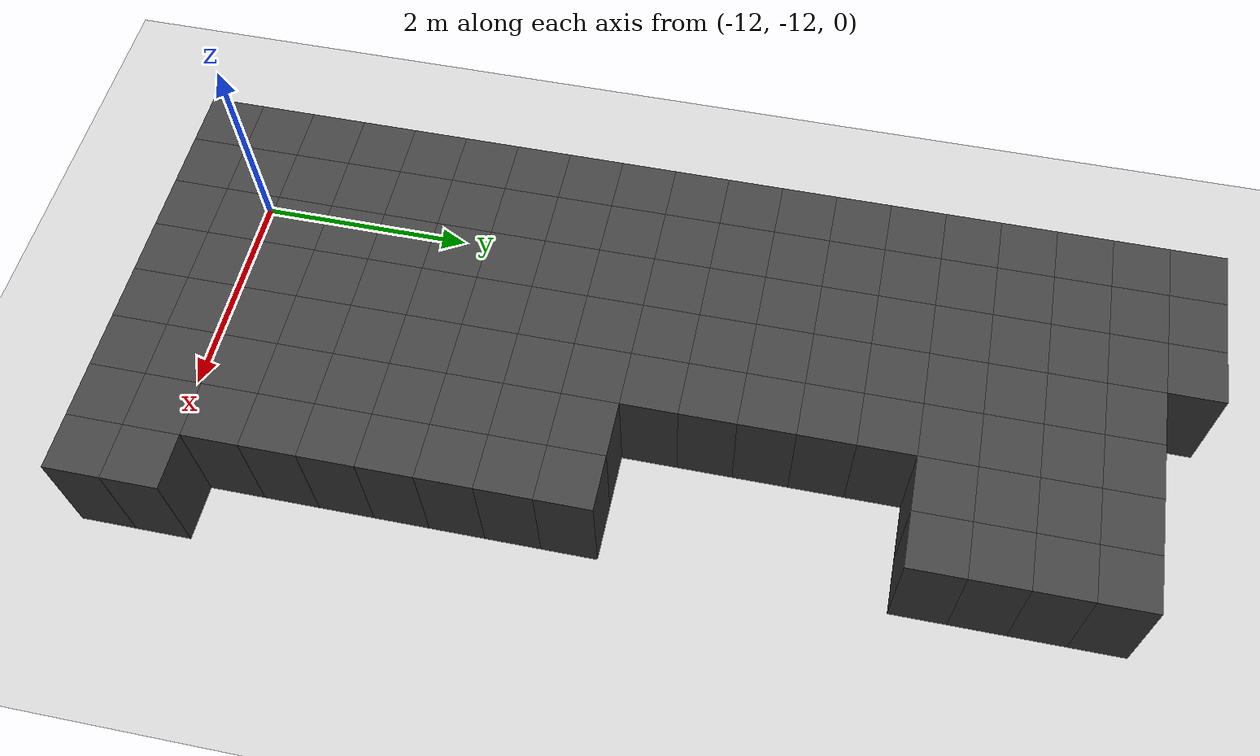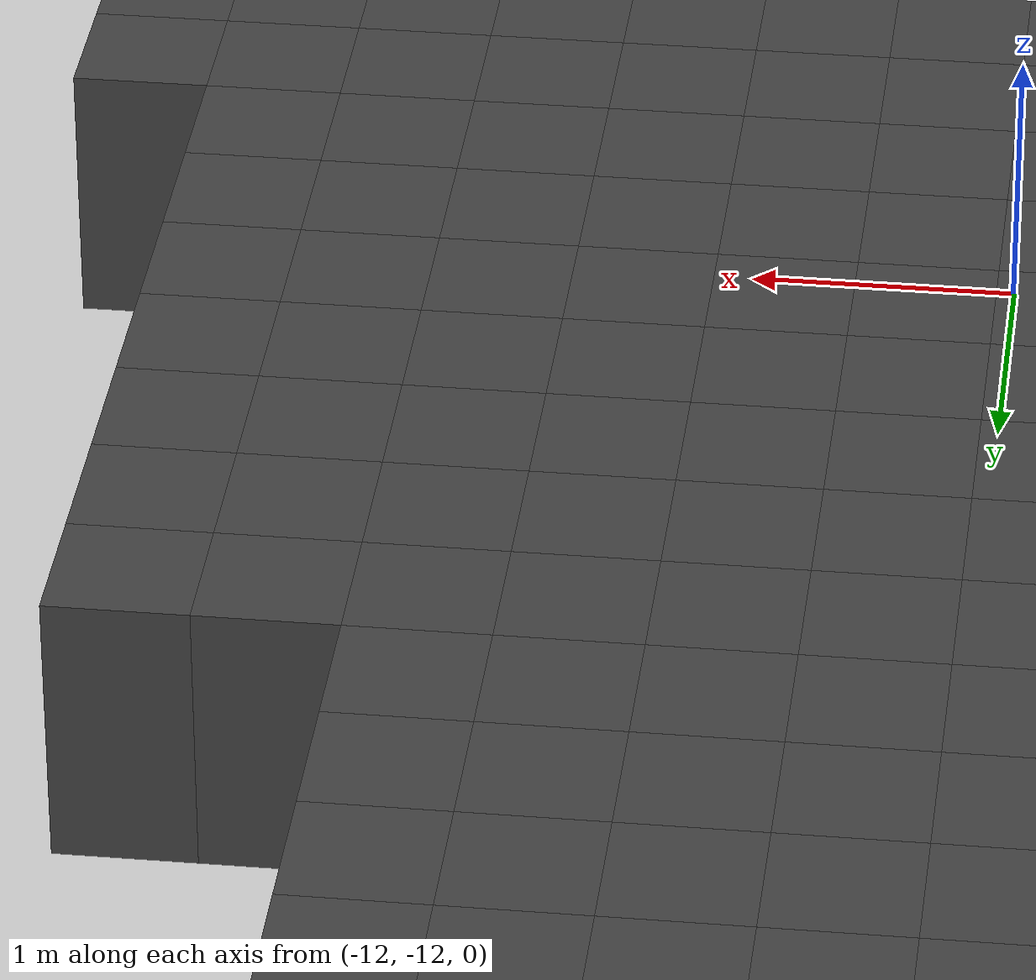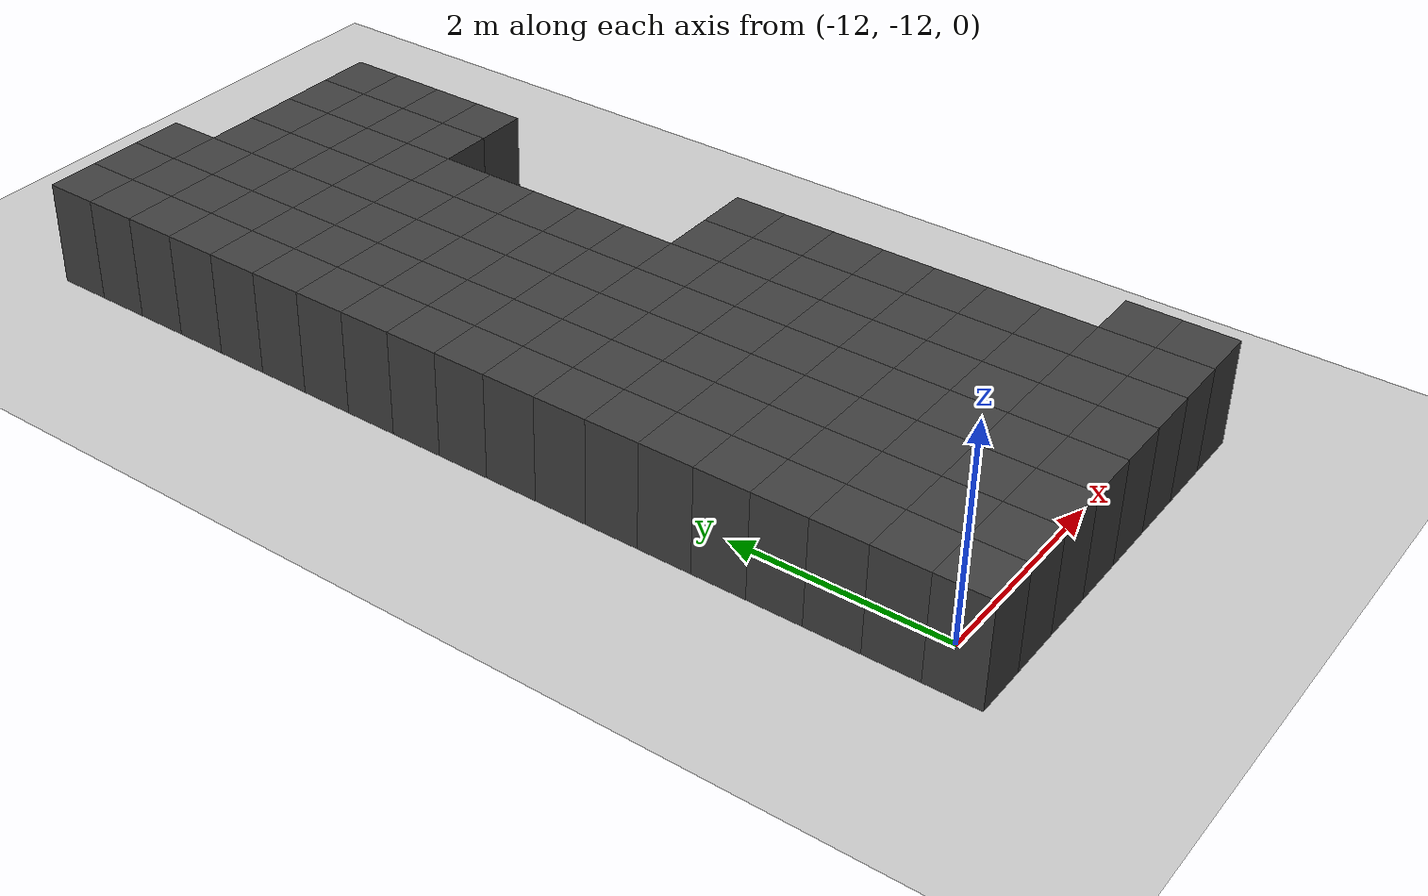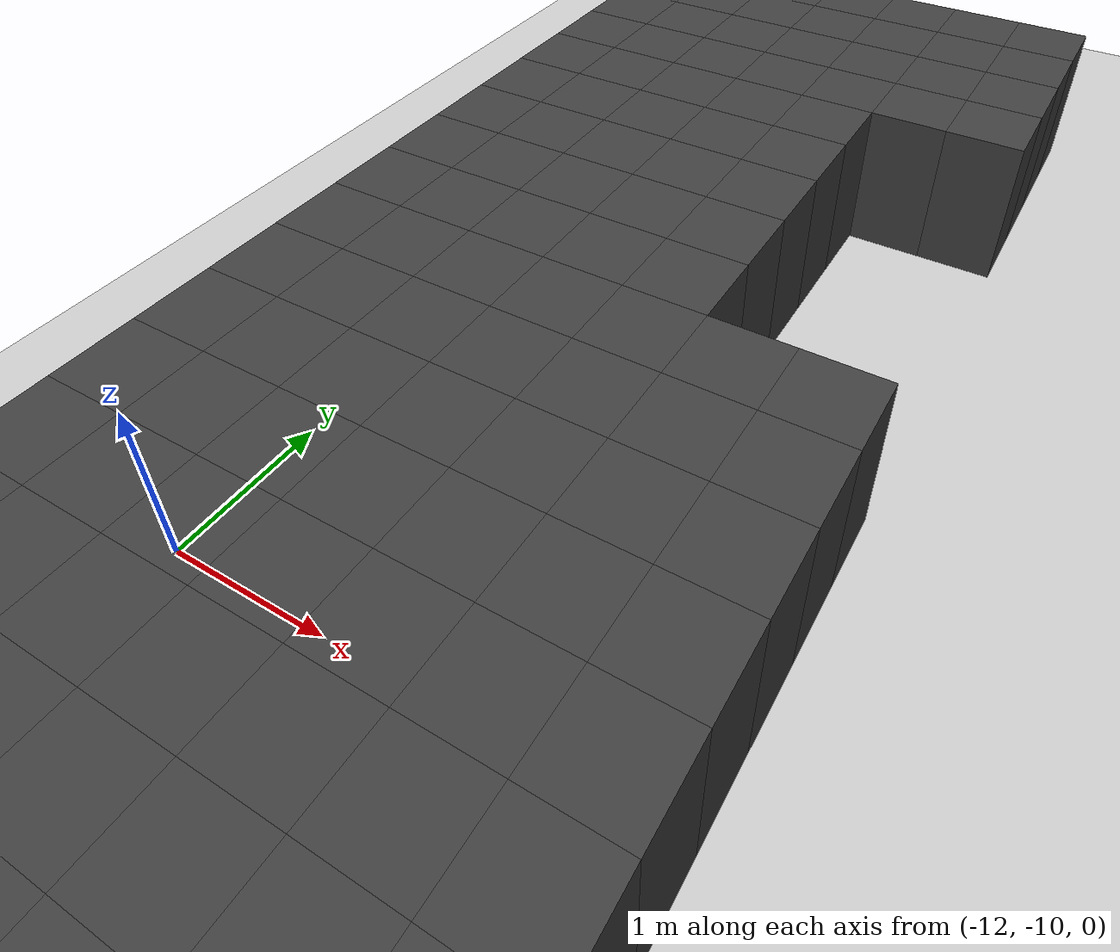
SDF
<sdf version="1.7">
 <world name="map_14510">
  <model name="ground_plane">
   <static>true</static>
   <link name="link">
    <collision name="collision">
     <geometry><plane><normal>0 0 1</normal><size>200 200</size></plane></geometry>
    </collision>
    <visual name="visual">
     <geometry><plane><normal>0 0 1</normal><size>200 200</size></plane></geometry>
     <material><ambient>0.8 0.8 0.8 1</ambient><diffuse>0.8 0.8 0.8 1</diffuse></material>
    </visual>
   </link>
  </model>
  <model name="maze_environment">
   <static>true</static>
   <link name="wall_1054">
    <pose>-12.250 -3.250 0.500 0 0 0</pose>
    <collision name="col"><geometry><box><size>0.5 0.5 1.0</size></box></geometry></collision>
    <visual name="vis">
     <geometry><box><size>0.5 0.5 1.0</size></box></geometry>
     <material><ambient>0.15 0.15 0.15 1</ambient><diffuse>0.25 0.25 0.25 1</diffuse></material>
    </visual>
   </link>
   <link name="wall_1055">
    <pose>-11.750 -3.250 0.500 0 0 0</pose>
    <collision name="col"><geometry><box><size>0.5 0.5 1.0</size></box></geometry></collision>
    <visual name="vis">
     <geometry><box><size>0.5 0.5 1.0</size></box></geometry>
     <material><ambient>0.15 0.15 0.15 1</ambient><diffuse>0.25 0.25 0.25 1</diffuse></material>
    </visual>
   </link>
   <link name="wall_1056">
    <pose>-11.250 -3.250 0.500 0 0 0</pose>
    <collision name="col"><geometry><box><size>0.5 0.5 1.0</size></box></geometry></collision>
    <visual name="vis">
     <geometry><box><size>0.5 0.5 1.0</size></box></geometry>
     <material><ambient>0.15 0.15 0.15 1</ambient><diffuse>0.25 0.25 0.25 1</diffuse></material>
    </visual>
   </link>
   <link name="wall_1090">
    <pose>-12.250 -3.750 0.500 0 0 0</pose>
    <collision name="col"><geometry><box><size>0.5 0.5 1.0</size></box></geometry></collision>
    <visual name="vis">
     <geometry><box><size>0.5 0.5 1.0</size></box></geometry>
     <material><ambient>0.15 0.15 0.15 1</ambient><diffuse>0.25 0.25 0.25 1</diffuse></material>
    </visual>
   </link>
   <link name="wall_1091">
    <pose>-11.750 -3.750 0.500 0 0 0</pose>
    <collision name="col"><geometry><box><size>0.5 0.5 1.0</size></box></geometry></collision>
    <visual name="vis">
     <geometry><box><size>0.5 0.5 1.0</size></box></geometry>
     <material><ambient>0.15 0.15 0.15 1</ambient><diffuse>0.25 0.25 0.25 1</diffuse></material>
    </visual>
   </link>
   <link name="wall_1092">
    <pose>-11.250 -3.750 0.500 0 0 0</pose>
    <collision name="col"><geometry><box><size>0.5 0.5 1.0</size></box></geometry></collision>
    <visual name="vis">
     <geometry><box><size>0.5 0.5 1.0</size></box></geometry>
     <material><ambient>0.15 0.15 0.15 1</ambient><diffuse>0.25 0.25 0.25 1</diffuse></material>
    </visual>
   </link>
   <link name="wall_1093">
    <pose>-10.750 -3.750 0.500 0 0 0</pose>
    <collision name="col"><geometry><box><size>0.5 0.5 1.0</size></box></geometry></collision>
    <visual name="vis">
     <geometry><box><size>0.5 0.5 1.0</size></box></geometry>
     <material><ambient>0.15 0.15 0.15 1</ambient><diffuse>0.25 0.25 0.25 1</diffuse></material>
    </visual>
   </link>
   <link name="wall_1094">
    <pose>-10.250 -3.750 0.500 0 0 0</pose>
    <collision name="col"><geometry><box><size>0.5 0.5 1.0</size></box></geometry></collision>
    <visual name="vis">
     <geometry><box><size>0.5 0.5 1.0</size></box></geometry>
     <material><ambient>0.15 0.15 0.15 1</ambient><diffuse>0.25 0.25 0.25 1</diffuse></material>
    </visual>
   </link>
   <link name="wall_1095">
    <pose>-9.750 -3.750 0.500 0 0 0</pose>
    <collision name="col"><geometry><box><size>0.5 0.5 1.0</size></box></geometry></collision>
    <visual name="vis">
     <geometry><box><size>0.5 0.5 1.0</size></box></geometry>
     <material><ambient>0.15 0.15 0.15 1</ambient><diffuse>0.25 0.25 0.25 1</diffuse></material>
    </visual>
   </link>
   <link name="wall_1096">
    <pose>-9.250 -3.750 0.500 0 0 0</pose>
    <collision name="col"><geometry><box><size>0.5 0.5 1.0</size></box></geometry></collision>
    <visual name="vis">
     <geometry><box><size>0.5 0.5 1.0</size></box></geometry>
     <material><ambient>0.15 0.15 0.15 1</ambient><diffuse>0.25 0.25 0.25 1</diffuse></material>
    </visual>
   </link>
   <link name="wall_1126">
    <pose>-12.250 -4.250 0.500 0 0 0</pose>
    <collision name="col"><geometry><box><size>0.5 0.5 1.0</size></box></geometry></collision>
    <visual name="vis">
     <geometry><box><size>0.5 0.5 1.0</size></box></geometry>
     <material><ambient>0.15 0.15 0.15 1</ambient><diffuse>0.25 0.25 0.25 1</diffuse></material>
    </visual>
   </link>
   <link name="wall_1127">
    <pose>-11.750 -4.250 0.500 0 0 0</pose>
    <collision name="col"><geometry><box><size>0.5 0.5 1.0</size></box></geometry></collision>
    <visual name="vis">
     <geometry><box><size>0.5 0.5 1.0</size></box></geometry>
     <material><ambient>0.15 0.15 0.15 1</ambient><diffuse>0.25 0.25 0.25 1</diffuse></material>
    </visual>
   </link>
   <link name="wall_1128">
    <pose>-11.250 -4.250 0.500 0 0 0</pose>
    <collision name="col"><geometry><box><size>0.5 0.5 1.0</size></box></geometry></collision>
    <visual name="vis">
     <geometry><box><size>0.5 0.5 1.0</size></box></geometry>
     <material><ambient>0.15 0.15 0.15 1</ambient><diffuse>0.25 0.25 0.25 1</diffuse></material>
    </visual>
   </link>
   <link name="wall_1129">
    <pose>-10.750 -4.250 0.500 0 0 0</pose>
    <collision name="col"><geometry><box><size>0.5 0.5 1.0</size></box></geometry></collision>
    <visual name="vis">
     <geometry><box><size>0.5 0.5 1.0</size></box></geometry>
     <material><ambient>0.15 0.15 0.15 1</ambient><diffuse>0.25 0.25 0.25 1</diffuse></material>
    </visual>
   </link>
   <link name="wall_1130">
    <pose>-10.250 -4.250 0.500 0 0 0</pose>
    <collision name="col"><geometry><box><size>0.5 0.5 1.0</size></box></geometry></collision>
    <visual name="vis">
     <geometry><box><size>0.5 0.5 1.0</size></box></geometry>
     <material><ambient>0.15 0.15 0.15 1</ambient><diffuse>0.25 0.25 0.25 1</diffuse></material>
    </visual>
   </link>
   <link name="wall_1131">
    <pose>-9.750 -4.250 0.500 0 0 0</pose>
    <collision name="col"><geometry><box><size>0.5 0.5 1.0</size></box></geometry></collision>
    <visual name="vis">
     <geometry><box><size>0.5 0.5 1.0</size></box></geometry>
     <material><ambient>0.15 0.15 0.15 1</ambient><diffuse>0.25 0.25 0.25 1</diffuse></material>
    </visual>
   </link>
   <link name="wall_1132">
    <pose>-9.250 -4.250 0.500 0 0 0</pose>
    <collision name="col"><geometry><box><size>0.5 0.5 1.0</size></box></geometry></collision>
    <visual name="vis">
     <geometry><box><size>0.5 0.5 1.0</size></box></geometry>
     <material><ambient>0.15 0.15 0.15 1</ambient><diffuse>0.25 0.25 0.25 1</diffuse></material>
    </visual>
   </link>
   <link name="wall_1167">
    <pose>-12.250 -4.750 0.500 0 0 0</pose>
    <collision name="col"><geometry><box><size>0.5 0.5 1.0</size></box></geometry></collision>
    <visual name="vis">
     <geometry><box><size>0.5 0.5 1.0</size></box></geometry>
     <material><ambient>0.15 0.15 0.15 1</ambient><diffuse>0.25 0.25 0.25 1</diffuse></material>
    </visual>
   </link>
   <link name="wall_1168">
    <pose>-11.750 -4.750 0.500 0 0 0</pose>
    <collision name="col"><geometry><box><size>0.5 0.5 1.0</size></box></geometry></collision>
    <visual name="vis">
     <geometry><box><size>0.5 0.5 1.0</size></box></geometry>
     <material><ambient>0.15 0.15 0.15 1</ambient><diffuse>0.25 0.25 0.25 1</diffuse></material>
    </visual>
   </link>
   <link name="wall_1169">
    <pose>-11.250 -4.750 0.500 0 0 0</pose>
    <collision name="col"><geometry><box><size>0.5 0.5 1.0</size></box></geometry></collision>
    <visual name="vis">
     <geometry><box><size>0.5 0.5 1.0</size></box></geometry>
     <material><ambient>0.15 0.15 0.15 1</ambient><diffuse>0.25 0.25 0.25 1</diffuse></material>
    </visual>
   </link>
   <link name="wall_1170">
    <pose>-10.750 -4.750 0.500 0 0 0</pose>
    <collision name="col"><geometry><box><size>0.5 0.5 1.0</size></box></geometry></collision>
    <visual name="vis">
     <geometry><box><size>0.5 0.5 1.0</size></box></geometry>
     <material><ambient>0.15 0.15 0.15 1</ambient><diffuse>0.25 0.25 0.25 1</diffuse></material>
    </visual>
   </link>
   <link name="wall_1171">
    <pose>-10.250 -4.750 0.500 0 0 0</pose>
    <collision name="col"><geometry><box><size>0.5 0.5 1.0</size></box></geometry></collision>
    <visual name="vis">
     <geometry><box><size>0.5 0.5 1.0</size></box></geometry>
     <material><ambient>0.15 0.15 0.15 1</ambient><diffuse>0.25 0.25 0.25 1</diffuse></material>
    </visual>
   </link>
   <link name="wall_1172">
    <pose>-9.750 -4.750 0.500 0 0 0</pose>
    <collision name="col"><geometry><box><size>0.5 0.5 1.0</size></box></geometry></collision>
    <visual name="vis">
     <geometry><box><size>0.5 0.5 1.0</size></box></geometry>
     <material><ambient>0.15 0.15 0.15 1</ambient><diffuse>0.25 0.25 0.25 1</diffuse></material>
    </visual>
   </link>
   <link name="wall_1173">
    <pose>-9.250 -4.750 0.500 0 0 0</pose>
    <collision name="col"><geometry><box><size>0.5 0.5 1.0</size></box></geometry></collision>
    <visual name="vis">
     <geometry><box><size>0.5 0.5 1.0</size></box></geometry>
     <material><ambient>0.15 0.15 0.15 1</ambient><diffuse>0.25 0.25 0.25 1</diffuse></material>
    </visual>
   </link>
   <link name="wall_1215">
    <pose>-12.250 -5.250 0.500 0 0 0</pose>
    <collision name="col"><geometry><box><size>0.5 0.5 1.0</size></box></geometry></collision>
    <visual name="vis">
     <geometry><box><size>0.5 0.5 1.0</size></box></geometry>
     <material><ambient>0.15 0.15 0.15 1</ambient><diffuse>0.25 0.25 0.25 1</diffuse></material>
    </visual>
   </link>
   <link name="wall_1216">
    <pose>-11.750 -5.250 0.500 0 0 0</pose>
    <collision name="col"><geometry><box><size>0.5 0.5 1.0</size></box></geometry></collision>
    <visual name="vis">
     <geometry><box><size>0.5 0.5 1.0</size></box></geometry>
     <material><ambient>0.15 0.15 0.15 1</ambient><diffuse>0.25 0.25 0.25 1</diffuse></material>
    </visual>
   </link>
   <link name="wall_1217">
    <pose>-11.250 -5.250 0.500 0 0 0</pose>
    <collision name="col"><geometry><box><size>0.5 0.5 1.0</size></box></geometry></collision>
    <visual name="vis">
     <geometry><box><size>0.5 0.5 1.0</size></box></geometry>
     <material><ambient>0.15 0.15 0.15 1</ambient><diffuse>0.25 0.25 0.25 1</diffuse></material>
    </visual>
   </link>
   <link name="wall_1218">
    <pose>-10.750 -5.250 0.500 0 0 0</pose>
    <collision name="col"><geometry><box><size>0.5 0.5 1.0</size></box></geometry></collision>
    <visual name="vis">
     <geometry><box><size>0.5 0.5 1.0</size></box></geometry>
     <material><ambient>0.15 0.15 0.15 1</ambient><diffuse>0.25 0.25 0.25 1</diffuse></material>
    </visual>
   </link>
   <link name="wall_1219">
    <pose>-10.250 -5.250 0.500 0 0 0</pose>
    <collision name="col"><geometry><box><size>0.5 0.5 1.0</size></box></geometry></collision>
    <visual name="vis">
     <geometry><box><size>0.5 0.5 1.0</size></box></geometry>
     <material><ambient>0.15 0.15 0.15 1</ambient><diffuse>0.25 0.25 0.25 1</diffuse></material>
    </visual>
   </link>
   <link name="wall_1220">
    <pose>-9.750 -5.250 0.500 0 0 0</pose>
    <collision name="col"><geometry><box><size>0.5 0.5 1.0</size></box></geometry></collision>
    <visual name="vis">
     <geometry><box><size>0.5 0.5 1.0</size></box></geometry>
     <material><ambient>0.15 0.15 0.15 1</ambient><diffuse>0.25 0.25 0.25 1</diffuse></material>
    </visual>
   </link>
   <link name="wall_1221">
    <pose>-9.250 -5.250 0.500 0 0 0</pose>
    <collision name="col"><geometry><box><size>0.5 0.5 1.0</size></box></geometry></collision>
    <visual name="vis">
     <geometry><box><size>0.5 0.5 1.0</size></box></geometry>
     <material><ambient>0.15 0.15 0.15 1</ambient><diffuse>0.25 0.25 0.25 1</diffuse></material>
    </visual>
   </link>
   <link name="wall_1263">
    <pose>-12.250 -5.750 0.500 0 0 0</pose>
    <collision name="col"><geometry><box><size>0.5 0.5 1.0</size></box></geometry></collision>
    <visual name="vis">
     <geometry><box><size>0.5 0.5 1.0</size></box></geometry>
     <material><ambient>0.15 0.15 0.15 1</ambient><diffuse>0.25 0.25 0.25 1</diffuse></material>
    </visual>
   </link>
   <link name="wall_1264">
    <pose>-11.750 -5.750 0.500 0 0 0</pose>
    <collision name="col"><geometry><box><size>0.5 0.5 1.0</size></box></geometry></collision>
    <visual name="vis">
     <geometry><box><size>0.5 0.5 1.0</size></box></geometry>
     <material><ambient>0.15 0.15 0.15 1</ambient><diffuse>0.25 0.25 0.25 1</diffuse></material>
    </visual>
   </link>
   <link name="wall_1265">
    <pose>-11.250 -5.750 0.500 0 0 0</pose>
    <collision name="col"><geometry><box><size>0.5 0.5 1.0</size></box></geometry></collision>
    <visual name="vis">
     <geometry><box><size>0.5 0.5 1.0</size></box></geometry>
     <material><ambient>0.15 0.15 0.15 1</ambient><diffuse>0.25 0.25 0.25 1</diffuse></material>
    </visual>
   </link>
   <link name="wall_1266">
    <pose>-10.750 -5.750 0.500 0 0 0</pose>
    <collision name="col"><geometry><box><size>0.5 0.5 1.0</size></box></geometry></collision>
    <visual name="vis">
     <geometry><box><size>0.5 0.5 1.0</size></box></geometry>
     <material><ambient>0.15 0.15 0.15 1</ambient><diffuse>0.25 0.25 0.25 1</diffuse></material>
    </visual>
   </link>
   <link name="wall_1267">
    <pose>-10.250 -5.750 0.500 0 0 0</pose>
    <collision name="col"><geometry><box><size>0.5 0.5 1.0</size></box></geometry></collision>
    <visual name="vis">
     <geometry><box><size>0.5 0.5 1.0</size></box></geometry>
     <material><ambient>0.15 0.15 0.15 1</ambient><diffuse>0.25 0.25 0.25 1</diffuse></material>
    </visual>
   </link>
   <link name="wall_1304">
    <pose>-12.250 -6.250 0.500 0 0 0</pose>
    <collision name="col"><geometry><box><size>0.5 0.5 1.0</size></box></geometry></collision>
    <visual name="vis">
     <geometry><box><size>0.5 0.5 1.0</size></box></geometry>
     <material><ambient>0.15 0.15 0.15 1</ambient><diffuse>0.25 0.25 0.25 1</diffuse></material>
    </visual>
   </link>
   <link name="wall_1305">
    <pose>-11.750 -6.250 0.500 0 0 0</pose>
    <collision name="col"><geometry><box><size>0.5 0.5 1.0</size></box></geometry></collision>
    <visual name="vis">
     <geometry><box><size>0.5 0.5 1.0</size></box></geometry>
     <material><ambient>0.15 0.15 0.15 1</ambient><diffuse>0.25 0.25 0.25 1</diffuse></material>
    </visual>
   </link>
   <link name="wall_1306">
    <pose>-11.250 -6.250 0.500 0 0 0</pose>
    <collision name="col"><geometry><box><size>0.5 0.5 1.0</size></box></geometry></collision>
    <visual name="vis">
     <geometry><box><size>0.5 0.5 1.0</size></box></geometry>
     <material><ambient>0.15 0.15 0.15 1</ambient><diffuse>0.25 0.25 0.25 1</diffuse></material>
    </visual>
   </link>
   <link name="wall_1307">
    <pose>-10.750 -6.250 0.500 0 0 0</pose>
    <collision name="col"><geometry><box><size>0.5 0.5 1.0</size></box></geometry></collision>
    <visual name="vis">
     <geometry><box><size>0.5 0.5 1.0</size></box></geometry>
     <material><ambient>0.15 0.15 0.15 1</ambient><diffuse>0.25 0.25 0.25 1</diffuse></material>
    </visual>
   </link>
   <link name="wall_1308">
    <pose>-10.250 -6.250 0.500 0 0 0</pose>
    <collision name="col"><geometry><box><size>0.5 0.5 1.0</size></box></geometry></collision>
    <visual name="vis">
     <geometry><box><size>0.5 0.5 1.0</size></box></geometry>
     <material><ambient>0.15 0.15 0.15 1</ambient><diffuse>0.25 0.25 0.25 1</diffuse></material>
    </visual>
   </link>
   <link name="wall_1339">
    <pose>-12.250 -6.750 0.500 0 0 0</pose>
    <collision name="col"><geometry><box><size>0.5 0.5 1.0</size></box></geometry></collision>
    <visual name="vis">
     <geometry><box><size>0.5 0.5 1.0</size></box></geometry>
     <material><ambient>0.15 0.15 0.15 1</ambient><diffuse>0.25 0.25 0.25 1</diffuse></material>
    </visual>
   </link>
   <link name="wall_1340">
    <pose>-11.750 -6.750 0.500 0 0 0</pose>
    <collision name="col"><geometry><box><size>0.5 0.5 1.0</size></box></geometry></collision>
    <visual name="vis">
     <geometry><box><size>0.5 0.5 1.0</size></box></geometry>
     <material><ambient>0.15 0.15 0.15 1</ambient><diffuse>0.25 0.25 0.25 1</diffuse></material>
    </visual>
   </link>
   <link name="wall_1341">
    <pose>-11.250 -6.750 0.500 0 0 0</pose>
    <collision name="col"><geometry><box><size>0.5 0.5 1.0</size></box></geometry></collision>
    <visual name="vis">
     <geometry><box><size>0.5 0.5 1.0</size></box></geometry>
     <material><ambient>0.15 0.15 0.15 1</ambient><diffuse>0.25 0.25 0.25 1</diffuse></material>
    </visual>
   </link>
   <link name="wall_1342">
    <pose>-10.750 -6.750 0.500 0 0 0</pose>
    <collision name="col"><geometry><box><size>0.5 0.5 1.0</size></box></geometry></collision>
    <visual name="vis">
     <geometry><box><size>0.5 0.5 1.0</size></box></geometry>
     <material><ambient>0.15 0.15 0.15 1</ambient><diffuse>0.25 0.25 0.25 1</diffuse></material>
    </visual>
   </link>
   <link name="wall_1343">
    <pose>-10.250 -6.750 0.500 0 0 0</pose>
    <collision name="col"><geometry><box><size>0.5 0.5 1.0</size></box></geometry></collision>
    <visual name="vis">
     <geometry><box><size>0.5 0.5 1.0</size></box></geometry>
     <material><ambient>0.15 0.15 0.15 1</ambient><diffuse>0.25 0.25 0.25 1</diffuse></material>
    </visual>
   </link>
   <link name="wall_1374">
    <pose>-12.250 -7.250 0.500 0 0 0</pose>
    <collision name="col"><geometry><box><size>0.5 0.5 1.0</size></box></geometry></collision>
    <visual name="vis">
     <geometry><box><size>0.5 0.5 1.0</size></box></geometry>
     <material><ambient>0.15 0.15 0.15 1</ambient><diffuse>0.25 0.25 0.25 1</diffuse></material>
    </visual>
   </link>
   <link name="wall_1375">
    <pose>-11.750 -7.250 0.500 0 0 0</pose>
    <collision name="col"><geometry><box><size>0.5 0.5 1.0</size></box></geometry></collision>
    <visual name="vis">
     <geometry><box><size>0.5 0.5 1.0</size></box></geometry>
     <material><ambient>0.15 0.15 0.15 1</ambient><diffuse>0.25 0.25 0.25 1</diffuse></material>
    </visual>
   </link>
   <link name="wall_1376">
    <pose>-11.250 -7.250 0.500 0 0 0</pose>
    <collision name="col"><geometry><box><size>0.5 0.5 1.0</size></box></geometry></collision>
    <visual name="vis">
     <geometry><box><size>0.5 0.5 1.0</size></box></geometry>
     <material><ambient>0.15 0.15 0.15 1</ambient><diffuse>0.25 0.25 0.25 1</diffuse></material>
    </visual>
   </link>
   <link name="wall_1377">
    <pose>-10.750 -7.250 0.500 0 0 0</pose>
    <collision name="col"><geometry><box><size>0.5 0.5 1.0</size></box></geometry></collision>
    <visual name="vis">
     <geometry><box><size>0.5 0.5 1.0</size></box></geometry>
     <material><ambient>0.15 0.15 0.15 1</ambient><diffuse>0.25 0.25 0.25 1</diffuse></material>
    </visual>
   </link>
   <link name="wall_1378">
    <pose>-10.250 -7.250 0.500 0 0 0</pose>
    <collision name="col"><geometry><box><size>0.5 0.5 1.0</size></box></geometry></collision>
    <visual name="vis">
     <geometry><box><size>0.5 0.5 1.0</size></box></geometry>
     <material><ambient>0.15 0.15 0.15 1</ambient><diffuse>0.25 0.25 0.25 1</diffuse></material>
    </visual>
   </link>
   <link name="wall_1404">
    <pose>-12.250 -7.750 0.500 0 0 0</pose>
    <collision name="col"><geometry><box><size>0.5 0.5 1.0</size></box></geometry></collision>
    <visual name="vis">
     <geometry><box><size>0.5 0.5 1.0</size></box></geometry>
     <material><ambient>0.15 0.15 0.15 1</ambient><diffuse>0.25 0.25 0.25 1</diffuse></material>
    </visual>
   </link>
   <link name="wall_1405">
    <pose>-11.750 -7.750 0.500 0 0 0</pose>
    <collision name="col"><geometry><box><size>0.5 0.5 1.0</size></box></geometry></collision>
    <visual name="vis">
     <geometry><box><size>0.5 0.5 1.0</size></box></geometry>
     <material><ambient>0.15 0.15 0.15 1</ambient><diffuse>0.25 0.25 0.25 1</diffuse></material>
    </visual>
   </link>
   <link name="wall_1406">
    <pose>-11.250 -7.750 0.500 0 0 0</pose>
    <collision name="col"><geometry><box><size>0.5 0.5 1.0</size></box></geometry></collision>
    <visual name="vis">
     <geometry><box><size>0.5 0.5 1.0</size></box></geometry>
     <material><ambient>0.15 0.15 0.15 1</ambient><diffuse>0.25 0.25 0.25 1</diffuse></material>
    </visual>
   </link>
   <link name="wall_1407">
    <pose>-10.750 -7.750 0.500 0 0 0</pose>
    <collision name="col"><geometry><box><size>0.5 0.5 1.0</size></box></geometry></collision>
    <visual name="vis">
     <geometry><box><size>0.5 0.5 1.0</size></box></geometry>
     <material><ambient>0.15 0.15 0.15 1</ambient><diffuse>0.25 0.25 0.25 1</diffuse></material>
    </visual>
   </link>
   <link name="wall_1408">
    <pose>-10.250 -7.750 0.500 0 0 0</pose>
    <collision name="col"><geometry><box><size>0.5 0.5 1.0</size></box></geometry></collision>
    <visual name="vis">
     <geometry><box><size>0.5 0.5 1.0</size></box></geometry>
     <material><ambient>0.15 0.15 0.15 1</ambient><diffuse>0.25 0.25 0.25 1</diffuse></material>
    </visual>
   </link>
   <link name="wall_1440">
    <pose>-12.250 -8.250 0.500 0 0 0</pose>
    <collision name="col"><geometry><box><size>0.5 0.5 1.0</size></box></geometry></collision>
    <visual name="vis">
     <geometry><box><size>0.5 0.5 1.0</size></box></geometry>
     <material><ambient>0.15 0.15 0.15 1</ambient><diffuse>0.25 0.25 0.25 1</diffuse></material>
    </visual>
   </link>
   <link name="wall_1441">
    <pose>-11.750 -8.250 0.500 0 0 0</pose>
    <collision name="col"><geometry><box><size>0.5 0.5 1.0</size></box></geometry></collision>
    <visual name="vis">
     <geometry><box><size>0.5 0.5 1.0</size></box></geometry>
     <material><ambient>0.15 0.15 0.15 1</ambient><diffuse>0.25 0.25 0.25 1</diffuse></material>
    </visual>
   </link>
   <link name="wall_1442">
    <pose>-11.250 -8.250 0.500 0 0 0</pose>
    <collision name="col"><geometry><box><size>0.5 0.5 1.0</size></box></geometry></collision>
    <visual name="vis">
     <geometry><box><size>0.5 0.5 1.0</size></box></geometry>
     <material><ambient>0.15 0.15 0.15 1</ambient><diffuse>0.25 0.25 0.25 1</diffuse></material>
    </visual>
   </link>
   <link name="wall_1443">
    <pose>-10.750 -8.250 0.500 0 0 0</pose>
    <collision name="col"><geometry><box><size>0.5 0.5 1.0</size></box></geometry></collision>
    <visual name="vis">
     <geometry><box><size>0.5 0.5 1.0</size></box></geometry>
     <material><ambient>0.15 0.15 0.15 1</ambient><diffuse>0.25 0.25 0.25 1</diffuse></material>
    </visual>
   </link>
   <link name="wall_1444">
    <pose>-10.250 -8.250 0.500 0 0 0</pose>
    <collision name="col"><geometry><box><size>0.5 0.5 1.0</size></box></geometry></collision>
    <visual name="vis">
     <geometry><box><size>0.5 0.5 1.0</size></box></geometry>
     <material><ambient>0.15 0.15 0.15 1</ambient><diffuse>0.25 0.25 0.25 1</diffuse></material>
    </visual>
   </link>
   <link name="wall_1445">
    <pose>-9.750 -8.250 0.500 0 0 0</pose>
    <collision name="col"><geometry><box><size>0.5 0.5 1.0</size></box></geometry></collision>
    <visual name="vis">
     <geometry><box><size>0.5 0.5 1.0</size></box></geometry>
     <material><ambient>0.15 0.15 0.15 1</ambient><diffuse>0.25 0.25 0.25 1</diffuse></material>
    </visual>
   </link>
   <link name="wall_1446">
    <pose>-9.250 -8.250 0.500 0 0 0</pose>
    <collision name="col"><geometry><box><size>0.5 0.5 1.0</size></box></geometry></collision>
    <visual name="vis">
     <geometry><box><size>0.5 0.5 1.0</size></box></geometry>
     <material><ambient>0.15 0.15 0.15 1</ambient><diffuse>0.25 0.25 0.25 1</diffuse></material>
    </visual>
   </link>
   <link name="wall_1488">
    <pose>-12.250 -8.750 0.500 0 0 0</pose>
    <collision name="col"><geometry><box><size>0.5 0.5 1.0</size></box></geometry></collision>
    <visual name="vis">
     <geometry><box><size>0.5 0.5 1.0</size></box></geometry>
     <material><ambient>0.15 0.15 0.15 1</ambient><diffuse>0.25 0.25 0.25 1</diffuse></material>
    </visual>
   </link>
   <link name="wall_1489">
    <pose>-11.750 -8.750 0.500 0 0 0</pose>
    <collision name="col"><geometry><box><size>0.5 0.5 1.0</size></box></geometry></collision>
    <visual name="vis">
     <geometry><box><size>0.5 0.5 1.0</size></box></geometry>
     <material><ambient>0.15 0.15 0.15 1</ambient><diffuse>0.25 0.25 0.25 1</diffuse></material>
    </visual>
   </link>
   <link name="wall_1490">
    <pose>-11.250 -8.750 0.500 0 0 0</pose>
    <collision name="col"><geometry><box><size>0.5 0.5 1.0</size></box></geometry></collision>
    <visual name="vis">
     <geometry><box><size>0.5 0.5 1.0</size></box></geometry>
     <material><ambient>0.15 0.15 0.15 1</ambient><diffuse>0.25 0.25 0.25 1</diffuse></material>
    </visual>
   </link>
   <link name="wall_1491">
    <pose>-10.750 -8.750 0.500 0 0 0</pose>
    <collision name="col"><geometry><box><size>0.5 0.5 1.0</size></box></geometry></collision>
    <visual name="vis">
     <geometry><box><size>0.5 0.5 1.0</size></box></geometry>
     <material><ambient>0.15 0.15 0.15 1</ambient><diffuse>0.25 0.25 0.25 1</diffuse></material>
    </visual>
   </link>
   <link name="wall_1492">
    <pose>-10.250 -8.750 0.500 0 0 0</pose>
    <collision name="col"><geometry><box><size>0.5 0.5 1.0</size></box></geometry></collision>
    <visual name="vis">
     <geometry><box><size>0.5 0.5 1.0</size></box></geometry>
     <material><ambient>0.15 0.15 0.15 1</ambient><diffuse>0.25 0.25 0.25 1</diffuse></material>
    </visual>
   </link>
   <link name="wall_1493">
    <pose>-9.750 -8.750 0.500 0 0 0</pose>
    <collision name="col"><geometry><box><size>0.5 0.5 1.0</size></box></geometry></collision>
    <visual name="vis">
     <geometry><box><size>0.5 0.5 1.0</size></box></geometry>
     <material><ambient>0.15 0.15 0.15 1</ambient><diffuse>0.25 0.25 0.25 1</diffuse></material>
    </visual>
   </link>
   <link name="wall_1494">
    <pose>-9.250 -8.750 0.500 0 0 0</pose>
    <collision name="col"><geometry><box><size>0.5 0.5 1.0</size></box></geometry></collision>
    <visual name="vis">
     <geometry><box><size>0.5 0.5 1.0</size></box></geometry>
     <material><ambient>0.15 0.15 0.15 1</ambient><diffuse>0.25 0.25 0.25 1</diffuse></material>
    </visual>
   </link>
   <link name="wall_1536">
    <pose>-12.250 -9.250 0.500 0 0 0</pose>
    <collision name="col"><geometry><box><size>0.5 0.5 1.0</size></box></geometry></collision>
    <visual name="vis">
     <geometry><box><size>0.5 0.5 1.0</size></box></geometry>
     <material><ambient>0.15 0.15 0.15 1</ambient><diffuse>0.25 0.25 0.25 1</diffuse></material>
    </visual>
   </link>
   <link name="wall_1537">
    <pose>-11.750 -9.250 0.500 0 0 0</pose>
    <collision name="col"><geometry><box><size>0.5 0.5 1.0</size></box></geometry></collision>
    <visual name="vis">
     <geometry><box><size>0.5 0.5 1.0</size></box></geometry>
     <material><ambient>0.15 0.15 0.15 1</ambient><diffuse>0.25 0.25 0.25 1</diffuse></material>
    </visual>
   </link>
   <link name="wall_1538">
    <pose>-11.250 -9.250 0.500 0 0 0</pose>
    <collision name="col"><geometry><box><size>0.5 0.5 1.0</size></box></geometry></collision>
    <visual name="vis">
     <geometry><box><size>0.5 0.5 1.0</size></box></geometry>
     <material><ambient>0.15 0.15 0.15 1</ambient><diffuse>0.25 0.25 0.25 1</diffuse></material>
    </visual>
   </link>
   <link name="wall_1539">
    <pose>-10.750 -9.250 0.500 0 0 0</pose>
    <collision name="col"><geometry><box><size>0.5 0.5 1.0</size></box></geometry></collision>
    <visual name="vis">
     <geometry><box><size>0.5 0.5 1.0</size></box></geometry>
     <material><ambient>0.15 0.15 0.15 1</ambient><diffuse>0.25 0.25 0.25 1</diffuse></material>
    </visual>
   </link>
   <link name="wall_1540">
    <pose>-10.250 -9.250 0.500 0 0 0</pose>
    <collision name="col"><geometry><box><size>0.5 0.5 1.0</size></box></geometry></collision>
    <visual name="vis">
     <geometry><box><size>0.5 0.5 1.0</size></box></geometry>
     <material><ambient>0.15 0.15 0.15 1</ambient><diffuse>0.25 0.25 0.25 1</diffuse></material>
    </visual>
   </link>
   <link name="wall_1541">
    <pose>-9.750 -9.250 0.500 0 0 0</pose>
    <collision name="col"><geometry><box><size>0.5 0.5 1.0</size></box></geometry></collision>
    <visual name="vis">
     <geometry><box><size>0.5 0.5 1.0</size></box></geometry>
     <material><ambient>0.15 0.15 0.15 1</ambient><diffuse>0.25 0.25 0.25 1</diffuse></material>
    </visual>
   </link>
   <link name="wall_1542">
    <pose>-9.250 -9.250 0.500 0 0 0</pose>
    <collision name="col"><geometry><box><size>0.5 0.5 1.0</size></box></geometry></collision>
    <visual name="vis">
     <geometry><box><size>0.5 0.5 1.0</size></box></geometry>
     <material><ambient>0.15 0.15 0.15 1</ambient><diffuse>0.25 0.25 0.25 1</diffuse></material>
    </visual>
   </link>
   <link name="wall_1577">
    <pose>-12.250 -9.750 0.500 0 0 0</pose>
    <collision name="col"><geometry><box><size>0.5 0.5 1.0</size></box></geometry></collision>
    <visual name="vis">
     <geometry><box><size>0.5 0.5 1.0</size></box></geometry>
     <material><ambient>0.15 0.15 0.15 1</ambient><diffuse>0.25 0.25 0.25 1</diffuse></material>
    </visual>
   </link>
   <link name="wall_1578">
    <pose>-11.750 -9.750 0.500 0 0 0</pose>
    <collision name="col"><geometry><box><size>0.5 0.5 1.0</size></box></geometry></collision>
    <visual name="vis">
     <geometry><box><size>0.5 0.5 1.0</size></box></geometry>
     <material><ambient>0.15 0.15 0.15 1</ambient><diffuse>0.25 0.25 0.25 1</diffuse></material>
    </visual>
   </link>
   <link name="wall_1579">
    <pose>-11.250 -9.750 0.500 0 0 0</pose>
    <collision name="col"><geometry><box><size>0.5 0.5 1.0</size></box></geometry></collision>
    <visual name="vis">
     <geometry><box><size>0.5 0.5 1.0</size></box></geometry>
     <material><ambient>0.15 0.15 0.15 1</ambient><diffuse>0.25 0.25 0.25 1</diffuse></material>
    </visual>
   </link>
   <link name="wall_1580">
    <pose>-10.750 -9.750 0.500 0 0 0</pose>
    <collision name="col"><geometry><box><size>0.5 0.5 1.0</size></box></geometry></collision>
    <visual name="vis">
     <geometry><box><size>0.5 0.5 1.0</size></box></geometry>
     <material><ambient>0.15 0.15 0.15 1</ambient><diffuse>0.25 0.25 0.25 1</diffuse></material>
    </visual>
   </link>
   <link name="wall_1581">
    <pose>-10.250 -9.750 0.500 0 0 0</pose>
    <collision name="col"><geometry><box><size>0.5 0.5 1.0</size></box></geometry></collision>
    <visual name="vis">
     <geometry><box><size>0.5 0.5 1.0</size></box></geometry>
     <material><ambient>0.15 0.15 0.15 1</ambient><diffuse>0.25 0.25 0.25 1</diffuse></material>
    </visual>
   </link>
   <link name="wall_1582">
    <pose>-9.750 -9.750 0.500 0 0 0</pose>
    <collision name="col"><geometry><box><size>0.5 0.5 1.0</size></box></geometry></collision>
    <visual name="vis">
     <geometry><box><size>0.5 0.5 1.0</size></box></geometry>
     <material><ambient>0.15 0.15 0.15 1</ambient><diffuse>0.25 0.25 0.25 1</diffuse></material>
    </visual>
   </link>
   <link name="wall_1583">
    <pose>-9.250 -9.750 0.500 0 0 0</pose>
    <collision name="col"><geometry><box><size>0.5 0.5 1.0</size></box></geometry></collision>
    <visual name="vis">
     <geometry><box><size>0.5 0.5 1.0</size></box></geometry>
     <material><ambient>0.15 0.15 0.15 1</ambient><diffuse>0.25 0.25 0.25 1</diffuse></material>
    </visual>
   </link>
   <link name="wall_1618">
    <pose>-12.250 -10.250 0.500 0 0 0</pose>
    <collision name="col"><geometry><box><size>0.5 0.5 1.0</size></box></geometry></collision>
    <visual name="vis">
     <geometry><box><size>0.5 0.5 1.0</size></box></geometry>
     <material><ambient>0.15 0.15 0.15 1</ambient><diffuse>0.25 0.25 0.25 1</diffuse></material>
    </visual>
   </link>
   <link name="wall_1619">
    <pose>-11.750 -10.250 0.500 0 0 0</pose>
    <collision name="col"><geometry><box><size>0.5 0.5 1.0</size></box></geometry></collision>
    <visual name="vis">
     <geometry><box><size>0.5 0.5 1.0</size></box></geometry>
     <material><ambient>0.15 0.15 0.15 1</ambient><diffuse>0.25 0.25 0.25 1</diffuse></material>
    </visual>
   </link>
   <link name="wall_1620">
    <pose>-11.250 -10.250 0.500 0 0 0</pose>
    <collision name="col"><geometry><box><size>0.5 0.5 1.0</size></box></geometry></collision>
    <visual name="vis">
     <geometry><box><size>0.5 0.5 1.0</size></box></geometry>
     <material><ambient>0.15 0.15 0.15 1</ambient><diffuse>0.25 0.25 0.25 1</diffuse></material>
    </visual>
   </link>
   <link name="wall_1621">
    <pose>-10.750 -10.250 0.500 0 0 0</pose>
    <collision name="col"><geometry><box><size>0.5 0.5 1.0</size></box></geometry></collision>
    <visual name="vis">
     <geometry><box><size>0.5 0.5 1.0</size></box></geometry>
     <material><ambient>0.15 0.15 0.15 1</ambient><diffuse>0.25 0.25 0.25 1</diffuse></material>
    </visual>
   </link>
   <link name="wall_1622">
    <pose>-10.250 -10.250 0.500 0 0 0</pose>
    <collision name="col"><geometry><box><size>0.5 0.5 1.0</size></box></geometry></collision>
    <visual name="vis">
     <geometry><box><size>0.5 0.5 1.0</size></box></geometry>
     <material><ambient>0.15 0.15 0.15 1</ambient><diffuse>0.25 0.25 0.25 1</diffuse></material>
    </visual>
   </link>
   <link name="wall_1623">
    <pose>-9.750 -10.250 0.500 0 0 0</pose>
    <collision name="col"><geometry><box><size>0.5 0.5 1.0</size></box></geometry></collision>
    <visual name="vis">
     <geometry><box><size>0.5 0.5 1.0</size></box></geometry>
     <material><ambient>0.15 0.15 0.15 1</ambient><diffuse>0.25 0.25 0.25 1</diffuse></material>
    </visual>
   </link>
   <link name="wall_1624">
    <pose>-9.250 -10.250 0.500 0 0 0</pose>
    <collision name="col"><geometry><box><size>0.5 0.5 1.0</size></box></geometry></collision>
    <visual name="vis">
     <geometry><box><size>0.5 0.5 1.0</size></box></geometry>
     <material><ambient>0.15 0.15 0.15 1</ambient><diffuse>0.25 0.25 0.25 1</diffuse></material>
    </visual>
   </link>
   <link name="wall_1650">
    <pose>-12.250 -10.750 0.500 0 0 0</pose>
    <collision name="col"><geometry><box><size>0.5 0.5 1.0</size></box></geometry></collision>
    <visual name="vis">
     <geometry><box><size>0.5 0.5 1.0</size></box></geometry>
     <material><ambient>0.15 0.15 0.15 1</ambient><diffuse>0.25 0.25 0.25 1</diffuse></material>
    </visual>
   </link>
   <link name="wall_1651">
    <pose>-11.750 -10.750 0.500 0 0 0</pose>
    <collision name="col"><geometry><box><size>0.5 0.5 1.0</size></box></geometry></collision>
    <visual name="vis">
     <geometry><box><size>0.5 0.5 1.0</size></box></geometry>
     <material><ambient>0.15 0.15 0.15 1</ambient><diffuse>0.25 0.25 0.25 1</diffuse></material>
    </visual>
   </link>
   <link name="wall_1652">
    <pose>-11.250 -10.750 0.500 0 0 0</pose>
    <collision name="col"><geometry><box><size>0.5 0.5 1.0</size></box></geometry></collision>
    <visual name="vis">
     <geometry><box><size>0.5 0.5 1.0</size></box></geometry>
     <material><ambient>0.15 0.15 0.15 1</ambient><diffuse>0.25 0.25 0.25 1</diffuse></material>
    </visual>
   </link>
   <link name="wall_1653">
    <pose>-10.750 -10.750 0.500 0 0 0</pose>
    <collision name="col"><geometry><box><size>0.5 0.5 1.0</size></box></geometry></collision>
    <visual name="vis">
     <geometry><box><size>0.5 0.5 1.0</size></box></geometry>
     <material><ambient>0.15 0.15 0.15 1</ambient><diffuse>0.25 0.25 0.25 1</diffuse></material>
    </visual>
   </link>
   <link name="wall_1654">
    <pose>-10.250 -10.750 0.500 0 0 0</pose>
    <collision name="col"><geometry><box><size>0.5 0.5 1.0</size></box></geometry></collision>
    <visual name="vis">
     <geometry><box><size>0.5 0.5 1.0</size></box></geometry>
     <material><ambient>0.15 0.15 0.15 1</ambient><diffuse>0.25 0.25 0.25 1</diffuse></material>
    </visual>
   </link>
   <link name="wall_1655">
    <pose>-9.750 -10.750 0.500 0 0 0</pose>
    <collision name="col"><geometry><box><size>0.5 0.5 1.0</size></box></geometry></collision>
    <visual name="vis">
     <geometry><box><size>0.5 0.5 1.0</size></box></geometry>
     <material><ambient>0.15 0.15 0.15 1</ambient><diffuse>0.25 0.25 0.25 1</diffuse></material>
    </visual>
   </link>
   <link name="wall_1656">
    <pose>-9.250 -10.750 0.500 0 0 0</pose>
    <collision name="col"><geometry><box><size>0.5 0.5 1.0</size></box></geometry></collision>
    <visual name="vis">
     <geometry><box><size>0.5 0.5 1.0</size></box></geometry>
     <material><ambient>0.15 0.15 0.15 1</ambient><diffuse>0.25 0.25 0.25 1</diffuse></material>
    </visual>
   </link>
   <link name="wall_1689">
    <pose>-12.250 -11.250 0.500 0 0 0</pose>
    <collision name="col"><geometry><box><size>0.5 0.5 1.0</size></box></geometry></collision>
    <visual name="vis">
     <geometry><box><size>0.5 0.5 1.0</size></box></geometry>
     <material><ambient>0.15 0.15 0.15 1</ambient><diffuse>0.25 0.25 0.25 1</diffuse></material>
    </visual>
   </link>
   <link name="wall_1690">
    <pose>-11.750 -11.250 0.500 0 0 0</pose>
    <collision name="col"><geometry><box><size>0.5 0.5 1.0</size></box></geometry></collision>
    <visual name="vis">
     <geometry><box><size>0.5 0.5 1.0</size></box></geometry>
     <material><ambient>0.15 0.15 0.15 1</ambient><diffuse>0.25 0.25 0.25 1</diffuse></material>
    </visual>
   </link>
   <link name="wall_1691">
    <pose>-11.250 -11.250 0.500 0 0 0</pose>
    <collision name="col"><geometry><box><size>0.5 0.5 1.0</size></box></geometry></collision>
    <visual name="vis">
     <geometry><box><size>0.5 0.5 1.0</size></box></geometry>
     <material><ambient>0.15 0.15 0.15 1</ambient><diffuse>0.25 0.25 0.25 1</diffuse></material>
    </visual>
   </link>
   <link name="wall_1692">
    <pose>-10.750 -11.250 0.500 0 0 0</pose>
    <collision name="col"><geometry><box><size>0.5 0.5 1.0</size></box></geometry></collision>
    <visual name="vis">
     <geometry><box><size>0.5 0.5 1.0</size></box></geometry>
     <material><ambient>0.15 0.15 0.15 1</ambient><diffuse>0.25 0.25 0.25 1</diffuse></material>
    </visual>
   </link>
   <link name="wall_1693">
    <pose>-10.250 -11.250 0.500 0 0 0</pose>
    <collision name="col"><geometry><box><size>0.5 0.5 1.0</size></box></geometry></collision>
    <visual name="vis">
     <geometry><box><size>0.5 0.5 1.0</size></box></geometry>
     <material><ambient>0.15 0.15 0.15 1</ambient><diffuse>0.25 0.25 0.25 1</diffuse></material>
    </visual>
   </link>
   <link name="wall_1694">
    <pose>-9.750 -11.250 0.500 0 0 0</pose>
    <collision name="col"><geometry><box><size>0.5 0.5 1.0</size></box></geometry></collision>
    <visual name="vis">
     <geometry><box><size>0.5 0.5 1.0</size></box></geometry>
     <material><ambient>0.15 0.15 0.15 1</ambient><diffuse>0.25 0.25 0.25 1</diffuse></material>
    </visual>
   </link>
   <link name="wall_1695">
    <pose>-9.250 -11.250 0.500 0 0 0</pose>
    <collision name="col"><geometry><box><size>0.5 0.5 1.0</size></box></geometry></collision>
    <visual name="vis">
     <geometry><box><size>0.5 0.5 1.0</size></box></geometry>
     <material><ambient>0.15 0.15 0.15 1</ambient><diffuse>0.25 0.25 0.25 1</diffuse></material>
    </visual>
   </link>
   <link name="wall_1721">
    <pose>-12.250 -11.750 0.500 0 0 0</pose>
    <collision name="col"><geometry><box><size>0.5 0.5 1.0</size></box></geometry></collision>
    <visual name="vis">
     <geometry><box><size>0.5 0.5 1.0</size></box></geometry>
     <material><ambient>0.15 0.15 0.15 1</ambient><diffuse>0.25 0.25 0.25 1</diffuse></material>
    </visual>
   </link>
   <link name="wall_1722">
    <pose>-11.750 -11.750 0.500 0 0 0</pose>
    <collision name="col"><geometry><box><size>0.5 0.5 1.0</size></box></geometry></collision>
    <visual name="vis">
     <geometry><box><size>0.5 0.5 1.0</size></box></geometry>
     <material><ambient>0.15 0.15 0.15 1</ambient><diffuse>0.25 0.25 0.25 1</diffuse></material>
    </visual>
   </link>
   <link name="wall_1723">
    <pose>-11.250 -11.750 0.500 0 0 0</pose>
    <collision name="col"><geometry><box><size>0.5 0.5 1.0</size></box></geometry></collision>
    <visual name="vis">
     <geometry><box><size>0.5 0.5 1.0</size></box></geometry>
     <material><ambient>0.15 0.15 0.15 1</ambient><diffuse>0.25 0.25 0.25 1</diffuse></material>
    </visual>
   </link>
   <link name="wall_1724">
    <pose>-10.750 -11.750 0.500 0 0 0</pose>
    <collision name="col"><geometry><box><size>0.5 0.5 1.0</size></box></geometry></collision>
    <visual name="vis">
     <geometry><box><size>0.5 0.5 1.0</size></box></geometry>
     <material><ambient>0.15 0.15 0.15 1</ambient><diffuse>0.25 0.25 0.25 1</diffuse></material>
    </visual>
   </link>
   <link name="wall_1725">
    <pose>-10.250 -11.750 0.500 0 0 0</pose>
    <collision name="col"><geometry><box><size>0.5 0.5 1.0</size></box></geometry></collision>
    <visual name="vis">
     <geometry><box><size>0.5 0.5 1.0</size></box></geometry>
     <material><ambient>0.15 0.15 0.15 1</ambient><diffuse>0.25 0.25 0.25 1</diffuse></material>
    </visual>
   </link>
   <link name="wall_1726">
    <pose>-9.750 -11.750 0.500 0 0 0</pose>
    <collision name="col"><geometry><box><size>0.5 0.5 1.0</size></box></geometry></collision>
    <visual name="vis">
     <geometry><box><size>0.5 0.5 1.0</size></box></geometry>
     <material><ambient>0.15 0.15 0.15 1</ambient><diffuse>0.25 0.25 0.25 1</diffuse></material>
    </visual>
   </link>
   <link name="wall_1727">
    <pose>-9.250 -11.750 0.500 0 0 0</pose>
    <collision name="col"><geometry><box><size>0.5 0.5 1.0</size></box></geometry></collision>
    <visual name="vis">
     <geometry><box><size>0.5 0.5 1.0</size></box></geometry>
     <material><ambient>0.15 0.15 0.15 1</ambient><diffuse>0.25 0.25 0.25 1</diffuse></material>
    </visual>
   </link>
   <link name="wall_1728">
    <pose>-8.750 -11.750 0.500 0 0 0</pose>
    <collision name="col"><geometry><box><size>0.5 0.5 1.0</size></box></geometry></collision>
    <visual name="vis">
     <geometry><box><size>0.5 0.5 1.0</size></box></geometry>
     <material><ambient>0.15 0.15 0.15 1</ambient><diffuse>0.25 0.25 0.25 1</diffuse></material>
    </visual>
   </link>
   <link name="wall_1768">
    <pose>-12.250 -12.250 0.500 0 0 0</pose>
    <collision name="col"><geometry><box><size>0.5 0.5 1.0</size></box></geometry></collision>
    <visual name="vis">
     <geometry><box><size>0.5 0.5 1.0</size></box></geometry>
     <material><ambient>0.15 0.15 0.15 1</ambient><diffuse>0.25 0.25 0.25 1</diffuse></material>
    </visual>
   </link>
   <link name="wall_1769">
    <pose>-11.750 -12.250 0.500 0 0 0</pose>
    <collision name="col"><geometry><box><size>0.5 0.5 1.0</size></box></geometry></collision>
    <visual name="vis">
     <geometry><box><size>0.5 0.5 1.0</size></box></geometry>
     <material><ambient>0.15 0.15 0.15 1</ambient><diffuse>0.25 0.25 0.25 1</diffuse></material>
    </visual>
   </link>
   <link name="wall_1770">
    <pose>-11.250 -12.250 0.500 0 0 0</pose>
    <collision name="col"><geometry><box><size>0.5 0.5 1.0</size></box></geometry></collision>
    <visual name="vis">
     <geometry><box><size>0.5 0.5 1.0</size></box></geometry>
     <material><ambient>0.15 0.15 0.15 1</ambient><diffuse>0.25 0.25 0.25 1</diffuse></material>
    </visual>
   </link>
   <link name="wall_1771">
    <pose>-10.750 -12.250 0.500 0 0 0</pose>
    <collision name="col"><geometry><box><size>0.5 0.5 1.0</size></box></geometry></collision>
    <visual name="vis">
     <geometry><box><size>0.5 0.5 1.0</size></box></geometry>
     <material><ambient>0.15 0.15 0.15 1</ambient><diffuse>0.25 0.25 0.25 1</diffuse></material>
    </visual>
   </link>
   <link name="wall_1772">
    <pose>-10.250 -12.250 0.500 0 0 0</pose>
    <collision name="col"><geometry><box><size>0.5 0.5 1.0</size></box></geometry></collision>
    <visual name="vis">
     <geometry><box><size>0.5 0.5 1.0</size></box></geometry>
     <material><ambient>0.15 0.15 0.15 1</ambient><diffuse>0.25 0.25 0.25 1</diffuse></material>
    </visual>
   </link>
   <link name="wall_1773">
    <pose>-9.750 -12.250 0.500 0 0 0</pose>
    <collision name="col"><geometry><box><size>0.5 0.5 1.0</size></box></geometry></collision>
    <visual name="vis">
     <geometry><box><size>0.5 0.5 1.0</size></box></geometry>
     <material><ambient>0.15 0.15 0.15 1</ambient><diffuse>0.25 0.25 0.25 1</diffuse></material>
    </visual>
   </link>
   <link name="wall_1774">
    <pose>-9.250 -12.250 0.500 0 0 0</pose>
    <collision name="col"><geometry><box><size>0.5 0.5 1.0</size></box></geometry></collision>
    <visual name="vis">
     <geometry><box><size>0.5 0.5 1.0</size></box></geometry>
     <material><ambient>0.15 0.15 0.15 1</ambient><diffuse>0.25 0.25 0.25 1</diffuse></material>
    </visual>
   </link>
   <link name="wall_1775">
    <pose>-8.750 -12.250 0.500 0 0 0</pose>
    <collision name="col"><geometry><box><size>0.5 0.5 1.0</size></box></geometry></collision>
    <visual name="vis">
     <geometry><box><size>0.5 0.5 1.0</size></box></geometry>
     <material><ambient>0.15 0.15 0.15 1</ambient><diffuse>0.25 0.25 0.25 1</diffuse></material>
    </visual>
   </link>
  </model>
 </world>
</sdf>
